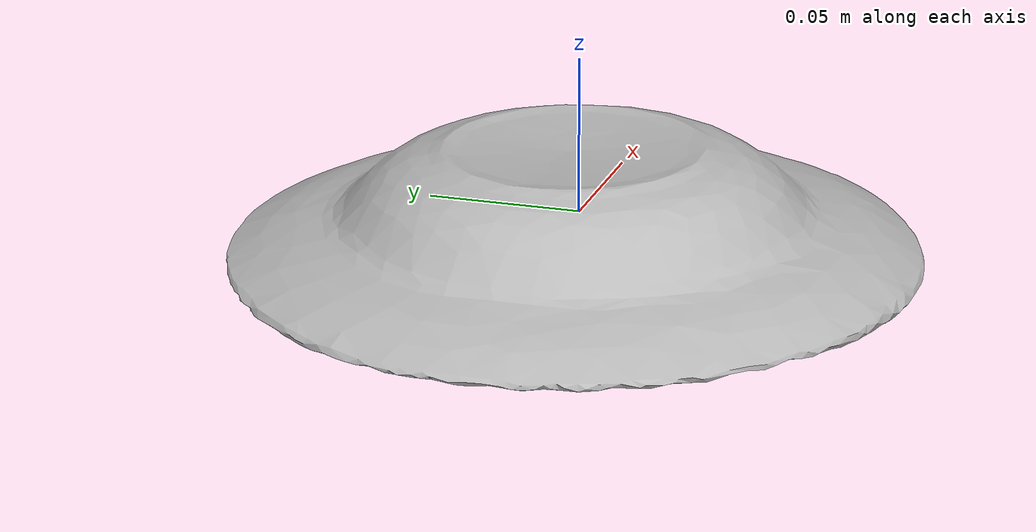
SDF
<?xml version='1.0'?>
<sdf version='1.6'>
	<model name='a_platebowl'>
		<static>false</static>
		<pose>0 0 0 0 0 0</pose>

		<link name='link'>
			<inertial>
			<mass>0.425</mass>
			<pose>0.00041553 -0.00077162 9.9512e-05 0 0 0</pose>
				<inertia>
					<ixx>2.1909e-05</ixx>
					<ixy>0</ixy>
					<ixz>0</ixz>
					<iyy>4.3318e-06</iyy>
					<iyz>0</iyz>
					<izz>3.9495e-06</izz>
				</inertia>
			</inertial>
			<collision name='collision'>
				<geometry>
					<mesh>
						<uri>model://a_platebowl/a_platebowl.dae</uri>
					</mesh>
				</geometry>
				<surface>
					<friction>
						<ode>
							<mu>0.2</mu>
							<mu2>0.2</mu2>
						</ode>
					</friction>
				</surface>
			</collision>
			<visual name='visual'>
				<geometry>
					<mesh>
						<uri>model://a_platebowl/a_platebowl.dae</uri>
					</mesh>
				</geometry>
			</visual>
		</link>
	</model>
</sdf>
